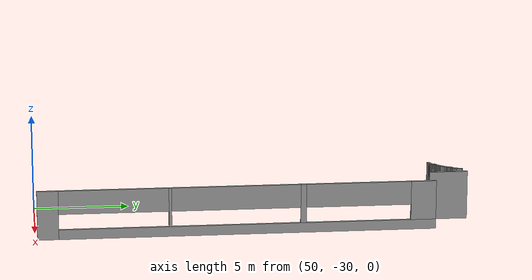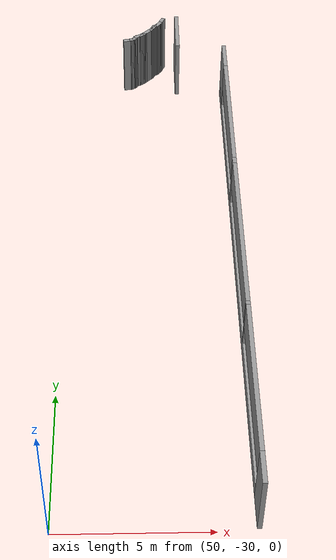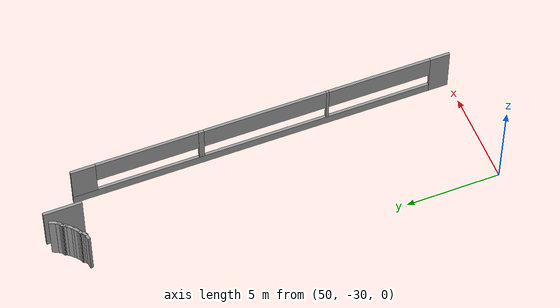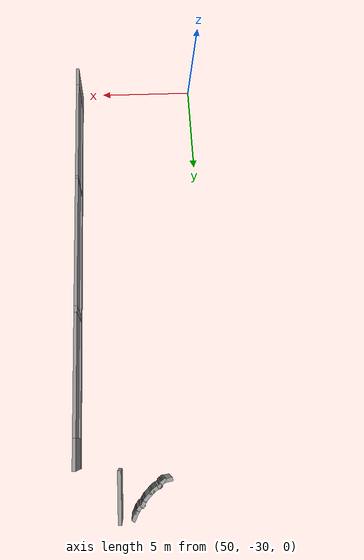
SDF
<sdf version="1.6">
 <model name="draft3">
  <pose>34.2026 -2.81154 0 0 -0 0</pose>
  <link name="Wall_337">
   <collision name="Wall_337_Collision">
    <geometry><box><size>2 0.15 2.5</size></box></geometry>
    <pose>0 0 1.25 0 -0 0</pose>
   </collision>
   <visual name="Wall_337_Visual">
    <pose>0 0 1.25 0 -0 0</pose>
    <geometry><box><size>2 0.15 2.5</size></box></geometry>
    <material>
     <script><uri>file://media/materials/scripts/gazebo.material</uri><name>Gazebo/Grey</name></script>
     <ambient>1 1 1 1</ambient>
    </material>
   </visual>
   <pose>20.1949 -5.81387 0 0 0 -1.5708</pose>
  </link>
  <link name="Wall_341">
   <collision name="Wall_341_Collision">
    <geometry><box><size>0.421384 0.15 2.5</size></box></geometry>
    <pose>0 0 1.25 0 -0 0</pose>
   </collision>
   <visual name="Wall_341_Visual">
    <pose>0 0 1.25 0 -0 0</pose>
    <geometry><box><size>0.421384 0.15 2.5</size></box></geometry>
    <material>
     <script><uri>file://media/materials/scripts/gazebo.material</uri><name>Gazebo/Grey</name></script>
     <ambient>1 1 1 1</ambient>
    </material>
   </visual>
   <pose>19.5678 -5.13161 0 0 0 -2.03444</pose>
  </link>
  <link name="Wall_342">
   <collision name="Wall_342_Collision">
    <geometry><box><size>0.352278 0.15 2.5</size></box></geometry>
    <pose>0 0 1.25 0 -0 0</pose>
   </collision>
   <visual name="Wall_342_Visual">
    <pose>0 0 1.25 0 -0 0</pose>
    <geometry><box><size>0.352278 0.15 2.5</size></box></geometry>
    <material>
     <script><uri>file://media/materials/scripts/gazebo.material</uri><name>Gazebo/Grey</name></script>
     <ambient>1 1 1 1</ambient>
    </material>
   </visual>
   <pose>19.4465 -5.33388 0 0 0 -2.2143</pose>
  </link>
  <link name="Wall_343">
   <collision name="Wall_343_Collision">
    <geometry><box><size>0.295865 0.15 2.5</size></box></geometry>
    <pose>0 0 1.25 0 -0 0</pose>
   </collision>
   <visual name="Wall_343_Visual">
    <pose>0 0 1.25 0 -0 0</pose>
    <geometry><box><size>0.295865 0.15 2.5</size></box></geometry>
    <material>
     <script><uri>file://media/materials/scripts/gazebo.material</uri><name>Gazebo/Grey</name></script>
     <ambient>1 1 1 1</ambient>
    </material>
   </visual>
   <pose>19.3251 -5.45525 0 0 0 -2.55359</pose>
  </link>
  <link name="Wall_344">
   <collision name="Wall_344_Collision">
    <geometry><box><size>0.240461 0.15 2.5</size></box></geometry>
    <pose>0 0 1.25 0 -0 0</pose>
   </collision>
   <visual name="Wall_344_Visual">
    <pose>0 0 1.25 0 -0 0</pose>
    <geometry><box><size>0.240461 0.15 2.5</size></box></geometry>
    <material>
     <script><uri>file://media/materials/scripts/gazebo.material</uri><name>Gazebo/Grey</name></script>
     <ambient>1 1 1 1</ambient>
    </material>
   </visual>
   <pose>19.2442 -5.53616 0 0 0 -2.03444</pose>
  </link>
  <link name="Wall_345">
   <collision name="Wall_345_Collision">
    <geometry><box><size>0.295865 0.15 2.5</size></box></geometry>
    <pose>0 0 1.25 0 -0 0</pose>
   </collision>
   <visual name="Wall_345_Visual">
    <pose>0 0 1.25 0 -0 0</pose>
    <geometry><box><size>0.295865 0.15 2.5</size></box></geometry>
    <material>
     <script><uri>file://media/materials/scripts/gazebo.material</uri><name>Gazebo/Grey</name></script>
     <ambient>1 1 1 1</ambient>
    </material>
   </visual>
   <pose>19.1835 -5.6373 0 0 0 -2.1588</pose>
  </link>
  <link name="Wall_346">
   <collision name="Wall_346_Collision">
    <geometry><box><size>0.493277 0.15 2.5</size></box></geometry>
    <pose>0 0 1.25 0 -0 0</pose>
   </collision>
   <visual name="Wall_346_Visual">
    <pose>0 0 1.25 0 -0 0</pose>
    <geometry><box><size>0.493277 0.15 2.5</size></box></geometry>
    <material>
     <script><uri>file://media/materials/scripts/gazebo.material</uri><name>Gazebo/Grey</name></script>
     <ambient>1 1 1 1</ambient>
    </material>
   </visual>
   <pose>19.0217 -5.81935 0 0 0 -2.35619</pose>
  </link>
  <link name="Wall_347">
   <collision name="Wall_347_Collision">
    <geometry><box><size>0.207213 0.15 2.5</size></box></geometry>
    <pose>0 0 1.25 0 -0 0</pose>
   </collision>
   <visual name="Wall_347_Visual">
    <pose>0 0 1.25 0 -0 0</pose>
    <geometry><box><size>0.207213 0.15 2.5</size></box></geometry>
    <material>
     <script><uri>file://media/materials/scripts/gazebo.material</uri><name>Gazebo/Grey</name></script>
     <ambient>1 1 1 1</ambient>
    </material>
   </visual>
   <pose>18.8801 -5.96094 0 0 0 -2.35619</pose>
  </link>
  <link name="Wall_348">
   <collision name="Wall_348_Collision">
    <geometry><box><size>0.352278 0.15 2.5</size></box></geometry>
    <pose>0 0 1.25 0 -0 0</pose>
   </collision>
   <visual name="Wall_348_Visual">
    <pose>0 0 1.25 0 -0 0</pose>
    <geometry><box><size>0.352278 0.15 2.5</size></box></geometry>
    <material>
     <script><uri>file://media/materials/scripts/gazebo.material</uri><name>Gazebo/Grey</name></script>
     <ambient>1 1 1 1</ambient>
    </material>
   </visual>
   <pose>18.779 -6.04185 0 0 0 -2.49809</pose>
  </link>
  <link name="Wall_349">
   <collision name="Wall_349_Collision">
    <geometry><box><size>0.330923 0.15 2.5</size></box></geometry>
    <pose>0 0 1.25 0 -0 0</pose>
   </collision>
   <visual name="Wall_349_Visual">
    <pose>0 0 1.25 0 -0 0</pose>
    <geometry><box><size>0.330923 0.15 2.5</size></box></geometry>
    <material>
     <script><uri>file://media/materials/scripts/gazebo.material</uri><name>Gazebo/Grey</name></script>
     <ambient>1 1 1 1</ambient>
    </material>
   </visual>
   <pose>18.6171 -6.14299 0 0 0 -2.67794</pose>
  </link>
  <link name="Wall_350">
   <collision name="Wall_350_Collision">
    <geometry><box><size>0.295865 0.15 2.5</size></box></geometry>
    <pose>0 0 1.25 0 -0 0</pose>
   </collision>
   <visual name="Wall_350_Visual">
    <pose>0 0 1.25 0 -0 0</pose>
    <geometry><box><size>0.295865 0.15 2.5</size></box></geometry>
    <material>
     <script><uri>file://media/materials/scripts/gazebo.material</uri><name>Gazebo/Grey</name></script>
     <ambient>1 1 1 1</ambient>
    </material>
   </visual>
   <pose>18.4958 -6.24413 0 0 0 -2.1588</pose>
  </link>
  <link name="Wall_351">
   <collision name="Wall_351_Collision">
    <geometry><box><size>0.295865 0.15 2.5</size></box></geometry>
    <pose>0 0 1.25 0 -0 0</pose>
   </collision>
   <visual name="Wall_351_Visual">
    <pose>0 0 1.25 0 -0 0</pose>
    <geometry><box><size>0.295865 0.15 2.5</size></box></geometry>
    <material>
     <script><uri>file://media/materials/scripts/gazebo.material</uri><name>Gazebo/Grey</name></script>
     <ambient>1 1 1 1</ambient>
    </material>
   </visual>
   <pose>18.3946 -6.34527 0 0 0 -2.55359</pose>
  </link>
  <link name="Wall_352">
   <collision name="Wall_352_Collision">
    <geometry><box><size>0.396082 0.15 2.5</size></box></geometry>
    <pose>0 0 1.25 0 -0 0</pose>
   </collision>
   <visual name="Wall_352_Visual">
    <pose>0 0 1.25 0 -0 0</pose>
    <geometry><box><size>0.396082 0.15 2.5</size></box></geometry>
    <material>
     <script><uri>file://media/materials/scripts/gazebo.material</uri><name>Gazebo/Grey</name></script>
     <ambient>1 1 1 1</ambient>
    </material>
   </visual>
   <pose>18.2126 -6.40595 0 0 0 -2.97644</pose>
  </link>
  <link name="Wall_9">
   <pose>22.0463 -16.9602 0 0 -0 1.5708</pose>
   <visual name="Wall_9_Visual_0">
    <pose>-9.59095 0 1.25 0 -0 0</pose>
    <geometry><box><size>1.06811 0.15 2.5</size></box></geometry>
    <material>
     <script><uri>file://media/materials/scripts/gazebo.material</uri><name>Gazebo/Grey</name></script>
     <ambient>1 1 1 1</ambient>
    </material>
   </visual>
   <collision name="Wall_9_Collision_0">
    <geometry><box><size>1.06811 0.15 2.5</size></box></geometry>
    <pose>-9.59095 0 1.25 0 -0 0</pose>
   </collision>
   <visual name="Wall_9_Visual_1">
    <pose>0.534053 0 0.25 0 -0 0</pose>
    <geometry><box><size>19.1819 0.15 0.5</size></box></geometry>
    <material>
     <script><uri>file://media/materials/scripts/gazebo.material</uri><name>Gazebo/Grey</name></script>
     <ambient>1 1 1 1</ambient>
    </material>
   </visual>
   <collision name="Wall_9_Collision_1">
    <geometry><box><size>19.1819 0.15 0.5</size></box></geometry>
    <pose>0.534053 0 0.25 0 -0 0</pose>
   </collision>
   <visual name="Wall_9_Visual_2">
    <pose>-3.44991 0 1.5 0 -0 0</pose>
    <geometry><box><size>0.144306 0.15 2</size></box></geometry>
    <material>
     <script><uri>file://media/materials/scripts/gazebo.material</uri><name>Gazebo/Grey</name></script>
     <ambient>1 1 1 1</ambient>
    </material>
   </visual>
   <collision name="Wall_9_Collision_2">
    <geometry><box><size>0.144306 0.15 2</size></box></geometry>
    <pose>-3.44991 0 1.5 0 -0 0</pose>
   </collision>
   <visual name="Wall_9_Visual_3">
    <pose>3.31319 0 1.5 0 -0 0</pose>
    <geometry><box><size>0.290609 0.15 2</size></box></geometry>
    <material>
     <script><uri>file://media/materials/scripts/gazebo.material</uri><name>Gazebo/Grey</name></script>
     <ambient>1 1 1 1</ambient>
    </material>
   </visual>
   <collision name="Wall_9_Collision_3">
    <geometry><box><size>0.290609 0.15 2</size></box></geometry>
    <pose>3.31319 0 1.5 0 -0 0</pose>
   </collision>
   <visual name="Wall_9_Visual_4">
    <pose>9.47937 0 1.5 0 -0 0</pose>
    <geometry><box><size>1.29127 0.15 2</size></box></geometry>
    <material>
     <script><uri>file://media/materials/scripts/gazebo.material</uri><name>Gazebo/Grey</name></script>
     <ambient>1 1 1 1</ambient>
    </material>
   </visual>
   <collision name="Wall_9_Collision_4">
    <geometry><box><size>1.29127 0.15 2</size></box></geometry>
    <pose>9.47937 0 1.5 0 -0 0</pose>
   </collision>
   <visual name="Wall_9_Visual_5">
    <pose>-6.28948 0 1.9 0 -0 0</pose>
    <geometry><box><size>5.53484 0.15 1.2</size></box></geometry>
    <material>
     <script><uri>file://media/materials/scripts/gazebo.material</uri><name>Gazebo/Grey</name></script>
     <ambient>1 1 1 1</ambient>
    </material>
   </visual>
   <collision name="Wall_9_Collision_5">
    <geometry><box><size>5.53484 0.15 1.2</size></box></geometry>
    <pose>-6.28948 0 1.9 0 -0 0</pose>
   </collision>
   <visual name="Wall_9_Visual_6">
    <pose>-0.104931 0 1.9 0 -0 0</pose>
    <geometry><box><size>6.54564 0.15 1.2</size></box></geometry>
    <material>
     <script><uri>file://media/materials/scripts/gazebo.material</uri><name>Gazebo/Grey</name></script>
     <ambient>1 1 1 1</ambient>
    </material>
   </visual>
   <collision name="Wall_9_Collision_6">
    <geometry><box><size>6.54564 0.15 1.2</size></box></geometry>
    <pose>-0.104931 0 1.9 0 -0 0</pose>
   </collision>
   <visual name="Wall_9_Visual_7">
    <pose>6.14612 0 1.9 0 -0 0</pose>
    <geometry><box><size>5.37523 0.15 1.2</size></box></geometry>
    <material>
     <script><uri>file://media/materials/scripts/gazebo.material</uri><name>Gazebo/Grey</name></script>
     <ambient>1 1 1 1</ambient>
    </material>
   </visual>
   <collision name="Wall_9_Collision_7">
    <geometry><box><size>5.37523 0.15 1.2</size></box></geometry>
    <pose>6.14612 0 1.9 0 -0 0</pose>
   </collision>
  </link>
  <static>1</static>
 </model>
</sdf>
